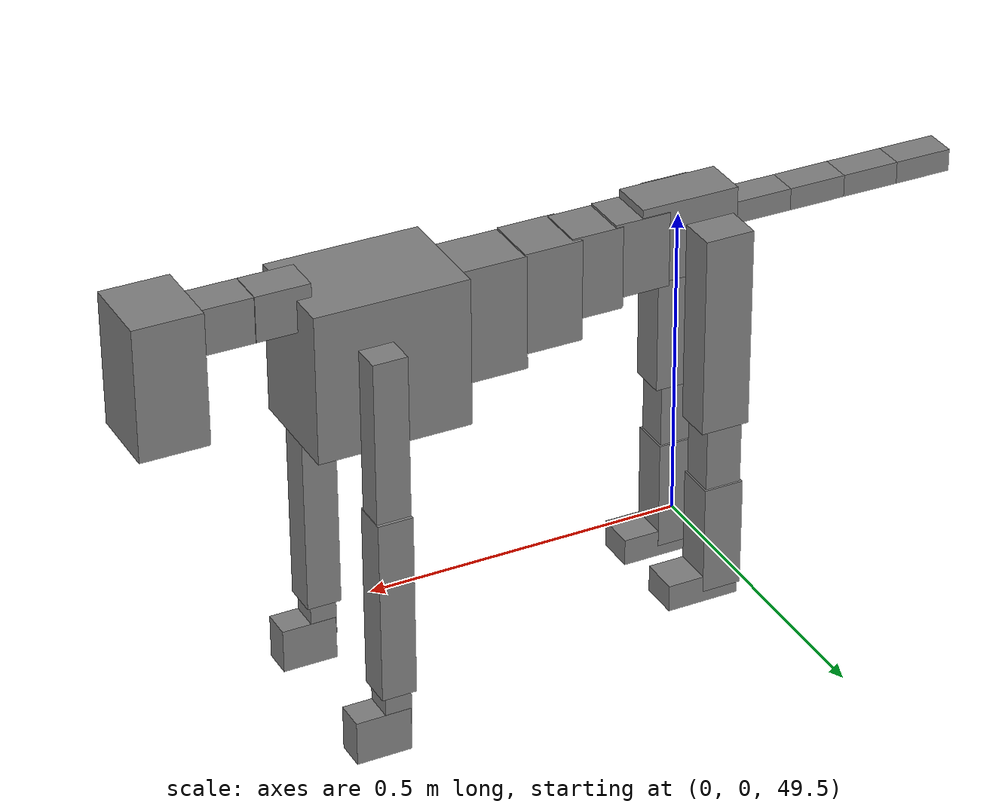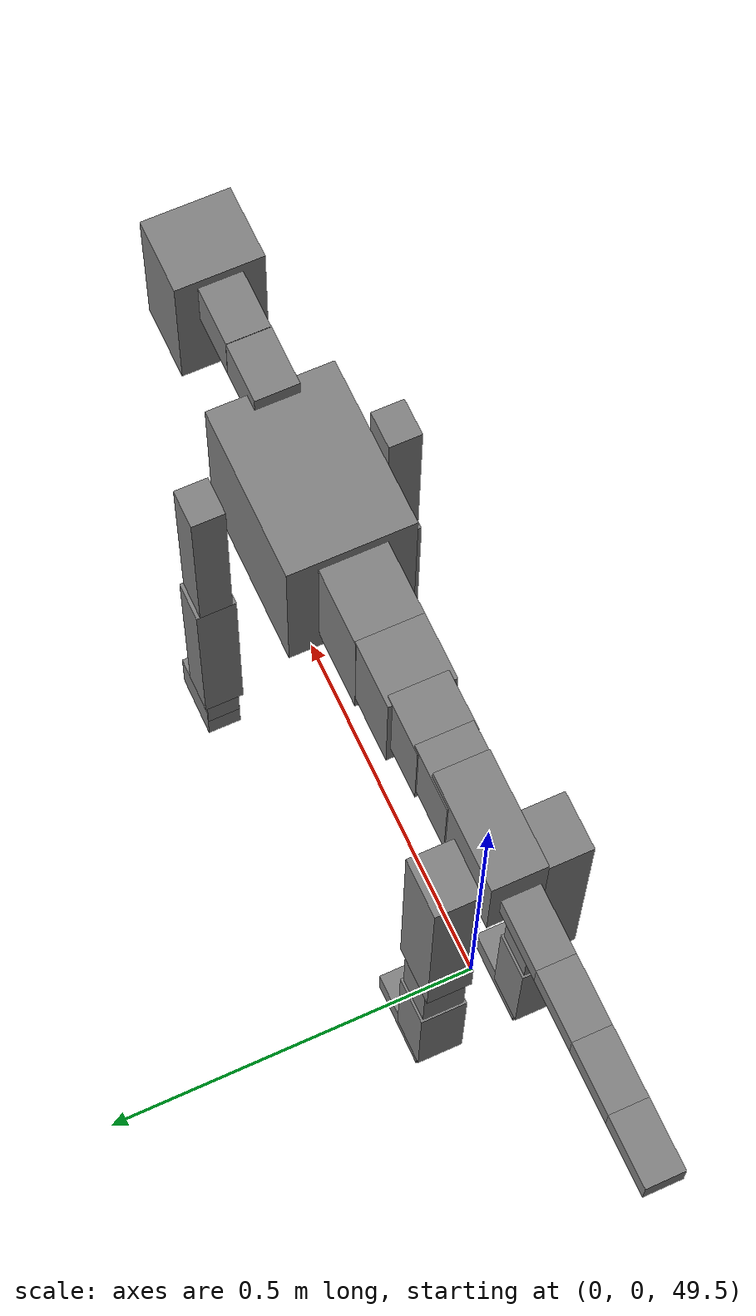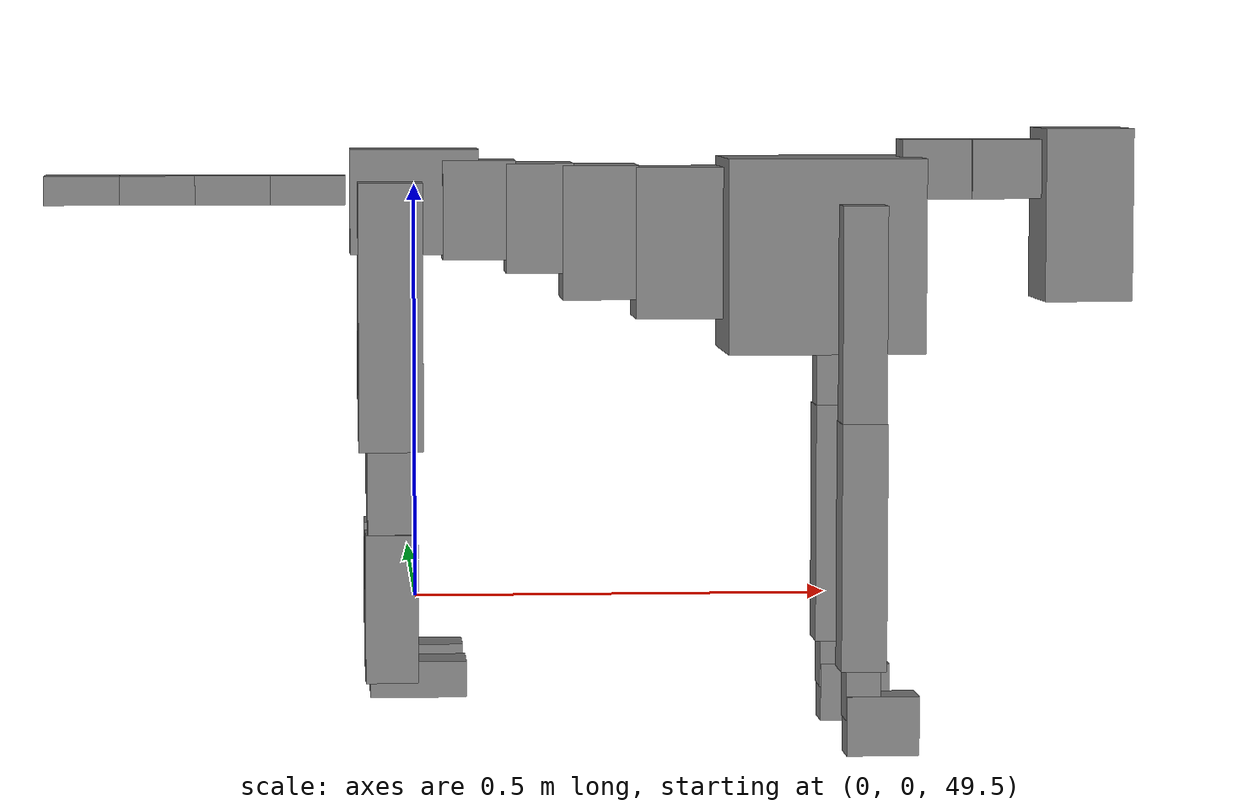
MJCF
<mujoco model="dog">

    <default>
        <joint armature="0.02" stiffness="1" damping="0.2" limited="true"/>
        <geom condim="3" friction="1 0.05 0.05" margin="0.01"/>
        <motor ctrllimited="true" ctrlrange="-1.0 1.0" forcelimited="true" gear="50"/>
    </default>

    <compiler inertiafromgeom="true" angle="radian"/>

    <option timestep="0.016" iterations="50" tolerance="1e-10" solver="Newton" jacobian="dense" cone="pyramidal"/>

    <size nconmax="20000" njmax="60000" nstack="5000000"/>
    <visual>
        <map force="0.1" zfar="30"/>
        <rgba haze="0.15 0.25 0.35 1"/>
        <quality shadowsize="2048"/>
        <global offwidth="800" offheight="800"/>
    </visual>

    <asset>
        <texture type="skybox" builtin="gradient" rgb1="0.3 0.5 0.7" rgb2="0 0 0" width="512" height="512"/>
        <texture name="texplane" type="2d" builtin="checker" rgb1=".2 .3 .4" rgb2=".1 0.15 0.2" width="512" height="512"
                 mark="cross" markrgb=".8 .8 .8"/>
        <texture name="texgeom" type="cube" builtin="flat" mark="cross" width="127" height="1278" rgb1="0.8 0.6 0.4"
                 rgb2="0.8 0.6 0.4" markrgb="1 1 1" random="0.01"/>

        <material name="matplane" reflectance="0.3" texture="texplane" texrepeat="1 1" texuniform="true"/>
        <material name="matgeom" texture="texgeom" texuniform="true" rgba="0.8 0.6 .4 1"/>
    </asset>

    <worldbody>
        <geom name="floor" pos="0 0 0" size="0 0 .25" type="plane" material="matplane" condim="3"/>

        <light directional="false" diffuse=".2 .2 .2" specular="0 0 0" pos="0 0 5" dir="0 0 -1" castshadow="false"/>
        <light mode="targetbodycom" target="torso" directional="false" diffuse=".8 .8 .8" specular="0.3 0.3 0.3"
               pos="0 0 4.0" dir="0 0 -1"/>

        <body name="root" pos="0 0 50">
            <freejoint name="root_1"/>
            <geom type="box" pos="0 0 -0.02" size="0.0774  0.0358  0.063" density="2030"/>

            <body name="spine1" pos="0.054 0 0">
                <joint name="spine1_y" axis="0 1 0" range="0 0.7" limited="true"/>
                <geom type="box" pos="0.02375 0 -0.03" size="0.04375  0.0375  0.05985" density="2030"/>

                <body name="spine2" pos="0.0612 0 0">
                    <joint name="spine2_y" axis="0 1 0" range="-0.15 0.15" limited="true"/>
                    <geom type="box" pos="0.03555  0  -0.04" size="0.04055  0.039  0.06615" density="2030"/>

                    <body name="spine3" pos="0.0730 0 0">
                        <joint name="spine3_y" axis="0 1 0" range="-0.15 0.15" limited="true"/>
                        <geom type="box" pos="0.03555  0  -0.057" size="0.04555  0.0445  0.081" density="2030"/>

                        <body name="spine4" pos="0.0780 0 0">
                            <joint name="spine4_y" axis="0 1 0" range="-0.15 0.15" limited="true"/>
                            <geom type="box" pos="0.05265  0  -0.07" size="0.05265  0.045  0.09135" density="2030"/>

                            <body name="torso" pos="0.1082 0 0">
                                <joint name="torso_y" axis="0 1 0" range="-0.15 0.15" limited="true"/>
                                <geom type="box" pos="0.11925  0  -0.085" size="0.11925  0.085  0.11745"
                                      density="2030"/>

                                <body name="neck1" pos="0.2160  0   0.0180">
                                    <joint name="neck1_y" axis="0 1 0" range="-1.2  -1" limited="true"/>
                                    <geom type="box" pos="0.0423  0  0" size="0.0423  0.03  0.036" density="2325"/>

                                    <body name="neck2" pos="0.0853  0  0">
                                        <joint name="neck2_y" axis="0 1 0" range="0.1  0" limited="true"/>
                                        <geom type="box" pos="0.0423  0  0" size="0.0423  0.03  0.036" density="2325"/>

                                        <body name="head" pos="0.0853  0  0">
                                            <joint name="head_y" axis="0 1 0" range="-0.3  -0.2" limited="true"/>
                                            <geom type="box" pos="0.0531  0  -0.055" size="0.0531  0.06  0.1044"
                                                  density="4030"/>

                                        </body>
                                    </body>
                                </body>

                                <body name="front_shoulder" pos="0.156  0   -0.0480">
                                    <joint name="front_shoulder_y" axis="0 1 0" range="-1 1.5" limited="true"/>
                                    <geom type="box" pos="0 0.13 -0.1160" size="0.0266  0.0227  0.1426" density="1158"/>
                                    <geom type="box" pos="0 -0.13 -0.1160" size="0.0266  0.0227  0.1426"
                                          density="1158"/>

                                    <body name="front_elbow" pos="0  0  -0.2319">
                                        <joint name="front_elbow_y" axis="0 1 0" range="-2 0" limited="true"/>
                                        <geom type="box" pos="0 0.13 -0.1483" size="0.0272  0.0278  0.1483"
                                              density="1081"/>
                                        <geom type="box" pos="0 -0.13 -0.1483" size="0.0272  0.0278  0.1483"
                                              density="1081"/>

                                        <body name="front_wrist" pos="0  0  -0.2965">
                                            <joint name="front_wrist_y" axis="0 1 0" range="-0.2 0" limited="true"/>
                                            <geom type="box" pos="0 0.13 -0.0227" size="0.0209  0.0233  0.0359"
                                                  density="1664"/>
                                            <geom type="box" pos="0 -0.13 -0.0227" size="0.0209  0.0233  0.0359"
                                                  density="1664"/>

                                            <body name="front_finger_end" pos="0  0  -0.0454">
                                                <joint name="front_finger_y" axis="0 1 0" range="-0.4 1"
                                                       limited="true"/>
                                                <geom type="box" pos="0.0238  0.13  -0.0207"
                                                      size="0.0435  0.0238  0.0357" density="1515"/>
                                                <geom type="box" pos="0.0238  -0.13  -0.0207"
                                                      size="0.0435  0.0238  0.0357" density="1515"/>

                                            </body>

                                        </body>
                                    </body>
                                </body>

                            </body>
                        </body>
                    </body>
                </body>
            </body>

            <body name="back_hip" pos="-0.03 0 -0.018">
                <joint name="back_hip_y" axis="0 1 0" range="-1.5 0.3" limited="true"/>
                <geom type="box" pos="0 0.07 -0.1374" size="0.0384  0.0301  0.1602" density="1154"/>
                <geom type="box" pos="0 -0.07 -0.1374" size="0.0384  0.0301  0.1602" density="1154"/>

                <body name="back_knee" pos="0  0  -0.2748">
                    <joint name="back_knee_y" axis="0 1 0" range="0 2.8" limited="true"/>
                    <geom type="box" pos="0 0.07 -0.0666" size="0.0286  0.0282  0.0821" density="1227"/>
                    <geom type="box" pos="0 -0.07 -0.0666" size="0.0286  0.0282  0.0821" density="1227"/>

                    <body name="back_ankle" pos="0  0  -0.1332">
                        <joint name="back_ankle_y" axis="0 1 0" range="-2.2 0" limited="true"/>
                        <geom type="box" pos="0 0.07 -0.0779" size="0.0315  0.0315  0.0891" density="1284"/>
                        <geom type="box" pos="0 -0.07 -0.0779" size="0.0315  0.0315  0.0891" density="1284"/>

                        <body name="back_toe_end" pos="0  0  -0.1557">
                            <joint name="back_toe_y" axis="0 1 0" range="-0.4 1" limited="true"/>
                            <geom type="box" pos="0.0314  0.07  -0.0067" size="0.0575  0.0314  0.0217" density="1515"/>
                            <geom type="box" pos="0.0314  -0.07  -0.0067" size="0.0575  0.0314  0.0217" density="1515"/>

                        </body>
                    </body>
                </body>
            </body>

            <body name="tail1" pos="-0.074 0 -0.006">
                <joint name="tail1_y" axis="0 1 0" range="-0.2 0.2" limited="true"/>
                <geom type="box" pos="-0.0536  0  0" size="0.045  0.025  0.0175" density="1587"/>

                <body name="tail2" pos="-0.09 0 0">
                    <joint name="tail2_y" axis="0 1 0" range="-0.2 0.2" limited="true"/>
                    <geom type="box" pos="-0.0536  0  0" size="0.045  0.025  0.0175" density="1587"/>

                    <body name="tail3" pos="-0.09 0 0">
                        <joint name="tail3_y" axis="0 1 0" range="-0.2 0.2" limited="true"/>
                        <geom type="box" pos="-0.0536  0  0" size="0.045  0.025  0.0175" density="1587"/>

                        <body name="tail4" pos="-0.09 0 0">
                            <joint name="tail4_y" axis="0 1 0" range="-0.2 0.2" limited="true"/>
                            <geom type="box" pos="-0.0536  0  0" size="0.045  0.025  0.0175" density="1587"/>

                        </body>
                    </body>
                </body>
            </body>
        </body>
    </worldbody>

    <actuator>
        <motor joint="spine1_y" forcerange="-150 150     "/>
        <motor joint="spine2_y" forcerange="-150 150     "/>
        <motor joint="spine3_y" forcerange="-150 150     "/>
        <motor joint="spine4_y" forcerange="-150 150     "/>
        <motor joint="torso_y" forcerange="-150 150     "/>
        <motor joint="neck1_y" forcerange="-100 100       "/>
        <motor joint="neck2_y" forcerange="-100 100       "/>
        <motor joint="head_y" forcerange="-150 150       "/>
        <motor joint="front_shoulder_y" forcerange="-132.04 119.42"/>
        <motor joint="front_elbow_y" forcerange="-137.28 165.14"/>
        <motor joint="front_wrist_y" forcerange="-65.29 120.84"/>
        <motor joint="front_finger_y" forcerange="-24.11 62.56"/>
        <motor joint="back_hip_y" forcerange="-359.04 242.33"/>
        <motor joint="back_knee_y" forcerange="-227.31 382.24"/>
        <motor joint="back_angle_y" forcerange="-215.63 188.86"/>
        <motor joint="back_toe_y" forcerange="-131.34 39.51"/>
        <motor joint="tail1_y" forcerange="-50 50     "/>
        <motor joint="tail2_y" forcerange="-50 50     "/>
        <motor joint="tail3_y" forcerange="-50 50     "/>
        <motor joint="tail4_y" forcerange="-50 50     "/>
    </actuator>
</mujoco>
